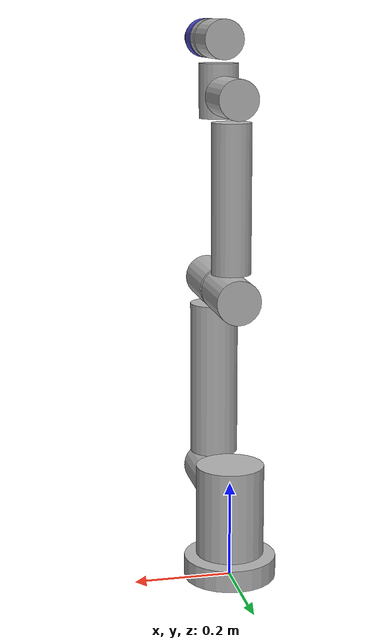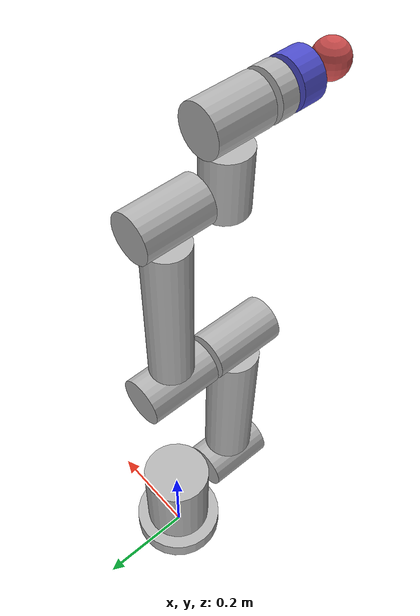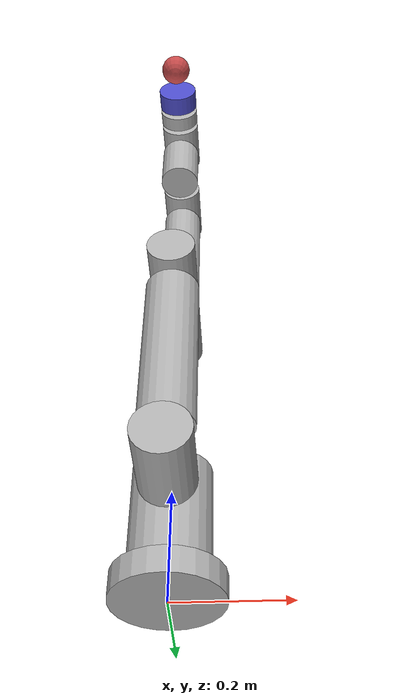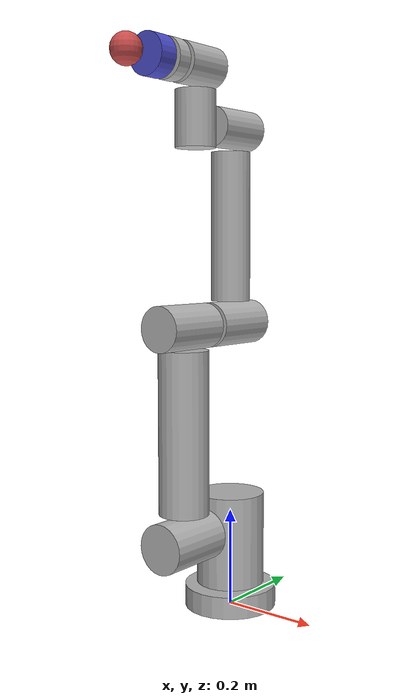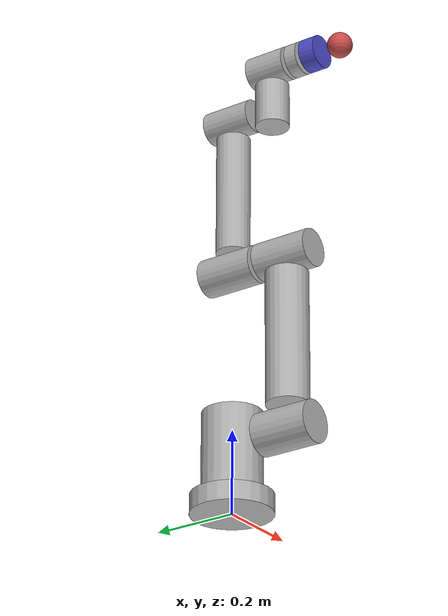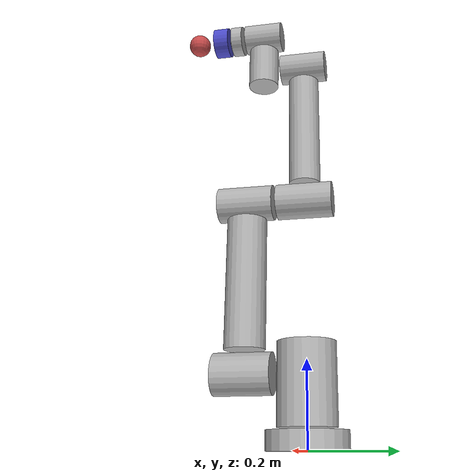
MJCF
<mujoco>
  <compiler coordinate="local" angle="degree"/>
  <default class="main">
    <geom rgba="0.7 0.7 0.7 1.0"/>
    <joint frictionloss="0.1" damping="0.5"/>
  </default>

  <option timestep="0.001" iterations="100" tolerance="1e-10" solver="Newton" gravity="0 0 -9.81"/>

  <asset>
    <texture type="skybox" builtin="gradient" rgb1="1 1 1" rgb2="1 1 1" width="256" height="256"/>
  </asset>

  <worldbody>
    <light pos="0 3 3" dir="0 -1 -1" diffuse="1 1 1" castshadow="false"/>

    <body>
      <geom name="base" type="cylinder" fromto="0 0 0  0 0 0.045" size="0.095"/>
      <inertial pos="0 0 0.02" mass="1" diaginertia="0.005 0.005 0.005"/>
      <body>
	<joint name="rb5.joint1" type="hinge" pos="0 0 0" axis="0 0 1"/>
	<geom type="cylinder" fromto="0 0 0.05  0 0 0.24" size="0.07"/>
	<inertial pos="0 0 0.1692" mass="1" diaginertia="0.01 0.01 0.01"/>
	<body>
	  <joint name="rb5.joint2" type="hinge" pos="0 0 0.1692" axis="0 1 0"/>
	  <geom type="cylinder" fromto="0 -0.08 0.1692  0 -0.22 0.1692" size="0.05"/>
	  <geom type="cylinder" fromto="0 -0.1484 0.225 0 -0.1484 0.55" size="0.05"/>
	  <geom type="cylinder" fromto="0 -0.08 0.5942  0 -0.22 0.5942" size="0.045"/>
	  <inertial pos="0 -0.1484 0.3817" mass="2" diaginertia="0.01 0.01 0.01"/>
	  <body>
	    <joint name="rb5.joint3" type="hinge" pos="0 0 0.5942" axis="0 1 0"/>
	    <geom type="cylinder" fromto="0 0.07 0.5942  0 -0.07 0.5942" size="0.045"/>
	    <geom type="cylinder" fromto="0 0 0.64  0 0 0.94" size="0.04"/>
	    <geom type="cylinder" fromto="0 0.06 0.9862  0 -0.06 0.9862" size="0.04"/>
	    <inertial pos="0 0 0.7902" mass="1.5" diaginertia="0.01 0.01 0.01"/>
	    <body>
	      <joint name="rb5.joint4" type="hinge" pos="0 0 0.9862" axis="0 1 0"/>
	      <geom type="cylinder" fromto="0 -0.1107 0.94  0 -0.1107 1.05" size="0.04"/>
	      <inertial pos="0 -0.1107 0.9862" mass="0.5" diaginertia="0.005 0.005 0.005"/>
	      <body>
		<joint name="rb5.joint5" type="hinge" pos="0 -0.1107 0.9" axis="0 0 1"/>
		<geom type="cylinder" fromto="0 -0.06 1.0969  0 -0.16 1.0969" size="0.04"/>
		<inertial pos="0 -0.1107 1.0969" mass="0.5" diaginertia="0.005 0.005 0.005"/>
		<body>
		  <joint name="rb5.joint6" type="hinge" pos="0 -0.1107 1.0969" axis="0 1 0"/>
		  <geom type="cylinder" fromto="0 -0.17 1.0969  0 -0.20 1.0969" size="0.04"/>
		  <inertial pos="0 -0.1580 1.0969" mass="0.1" diaginertia="0.005 0.005 0.005"/>

		  <body>
		    <geom type="cylinder" fromto="0 -0.21 1.0969  0 -0.25 1.0969" size="0.04" rgba="0.3 0.3 0.8 1.0"/>
		    <geom type="sphere" pos="0 -0.30 1.0969" size = "0.03" rgba="0.8 0.3 0.3 1.0"/>
		    <inertial pos="0 -0.25 1.0969" mass="0.1" diaginertia="0.005 0.005 0.005"/>
		    <site name="sensor" pos="0 -0.20 1.0969" euler="-90 0 0" type="sphere" size="0.01"/>
		  </body>

		</body>
	      </body>
	    </body>
	  </body>
	</body>
      </body>
    </body>

  </worldbody>

  <actuator>
    <!-- motor: feedforward torque channel (ctrl = tau, paired 1:1 with position below) -->
    <motor gear="1" joint="rb5.joint1" />
    <motor gear="1" joint="rb5.joint2" />
    <motor gear="1" joint="rb5.joint3" />
    <motor gear="1" joint="rb5.joint4" />
    <motor gear="1" joint="rb5.joint5" />
    <motor gear="1" joint="rb5.joint6" />
    <position joint="rb5.joint1" kp="1000" kv="20"/>
    <position joint="rb5.joint2" kp="1000" kv="20"/>
    <position joint="rb5.joint3" kp="1000" kv="20"/>
    <position joint="rb5.joint4" kp="1000" kv="20"/>
    <position joint="rb5.joint5" kp="1000" kv="20"/>
    <position joint="rb5.joint6" kp="1000" kv="20"/>
  </actuator>

  <sensor>
    <jointpos joint="rb5.joint1"/>
    <jointpos joint="rb5.joint2"/>
    <jointpos joint="rb5.joint3"/>
    <jointpos joint="rb5.joint4"/>
    <jointpos joint="rb5.joint5"/>
    <jointpos joint="rb5.joint6"/>

    <jointvel joint="rb5.joint1"/>
    <jointvel joint="rb5.joint2"/>
    <jointvel joint="rb5.joint3"/>
    <jointvel joint="rb5.joint4"/>
    <jointvel joint="rb5.joint5"/>
    <jointvel joint="rb5.joint6"/>

    <torque site="sensor"/>
    <force site="sensor"/>

  </sensor>

</mujoco>
